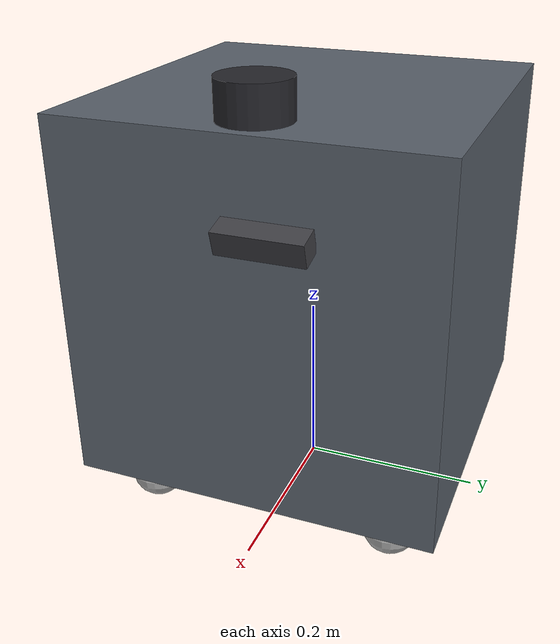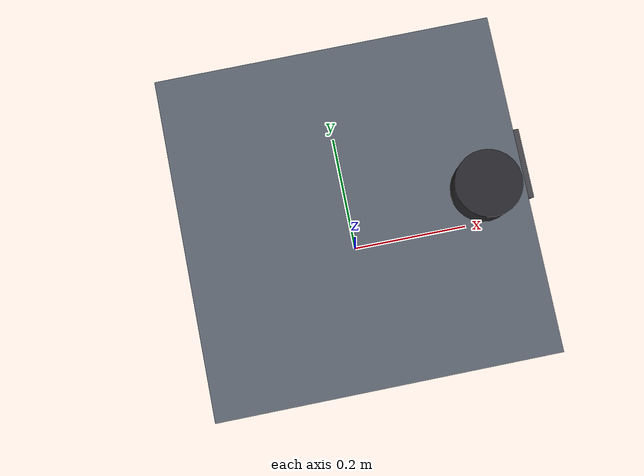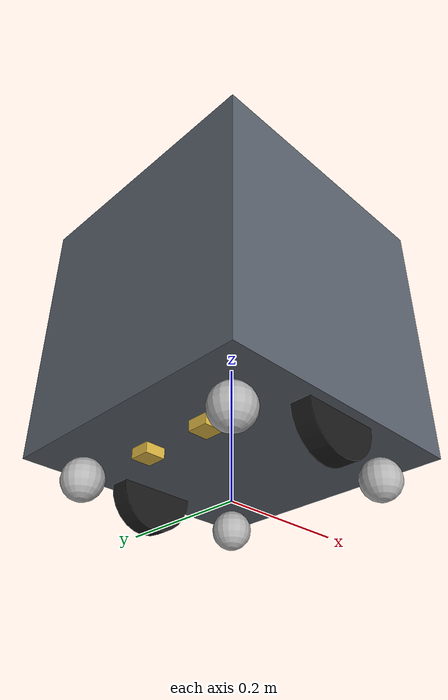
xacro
<?xml version="1.0"?>
<robot xmlns:xacro="http://www.ros.org/wiki/xacro" name="orinbot">

  <!-- 시뮬레이션용 플러그인/센서를 포함할지 여부 -->
  <xacro:arg name="sim_mode" default="true"/>
  <!-- gz_ros2_control 에 넘길 컨트롤러 설정 파일 경로 -->
  <xacro:arg name="controllers_file" default=""/>
  <!-- 실물 런치에서 실측 구동륜 치수를 전달합니다. 기본값은 기존 시뮬레이션 치수. -->
  <xacro:arg name="wheel_radius" default="0.06"/>
  <xacro:arg name="wheel_separation" default="0.34"/>

  <xacro:include filename="$(find orinbot_description)/urdf/inertial_macros.xacro"/>
  <xacro:include filename="$(find orinbot_description)/urdf/d435i.urdf.xacro"/>
  <xacro:include filename="$(find orinbot_description)/urdf/rplidar_a2m12.urdf.xacro"/>
  <xacro:include filename="$(find orinbot_description)/urdf/orinbot.ros2_control.xacro"/>

  <!-- ======================= 치수 파라미터 ======================= -->
  <!-- 40 cm 정육면체 섀시 -->
  <xacro:property name="base_length" value="0.40"/>   <!-- 전후 길이 (x) -->
  <xacro:property name="base_width"  value="0.40"/>   <!-- 좌우 폭  (y) -->
  <xacro:property name="base_height" value="0.40"/>   <!-- 높이    (z) -->
  <xacro:property name="base_mass"   value="10.0"/>

  <xacro:property name="wheel_radius"     value="${float('$(arg wheel_radius)')}"/>
  <xacro:property name="wheel_width"      value="0.03"/>
  <xacro:property name="wheel_separation" value="${float('$(arg wheel_separation)')}"/> <!-- 좌우 구동륜 중심 간 거리 -->
  <xacro:property name="wheel_mass"       value="0.5"/>

  <!-- 캐스터 반지름을 구동륜의 절반으로 두면 섀시 바닥면이 자연스럽게 맞습니다 -->
  <xacro:property name="caster_radius" value="${wheel_radius/2.0}"/>
  <xacro:property name="caster_mass"   value="0.1"/>
  <xacro:property name="caster_x"      value="${base_length/2.0 - 0.06}"/>
  <xacro:property name="caster_y"      value="${base_width/2.0 - 0.06}"/>

  <!-- 지면 대비 섀시 바닥 높이 = 캐스터 지름 -->
  <xacro:property name="ground_clearance" value="${2*caster_radius}"/>
  <!-- base_link(섀시 중심)의 지면 기준 높이 -->
  <xacro:property name="base_z" value="${ground_clearance + base_height/2.0}"/>

  <material name="chassis_grey"><color rgba="0.35 0.38 0.42 1.0"/></material>
  <material name="wheel_black"><color rgba="0.1 0.1 0.1 1.0"/></material>
  <material name="caster_silver"><color rgba="0.7 0.7 0.7 1.0"/></material>
  <material name="pogo_gold"><color rgba="0.85 0.7 0.25 1.0"/></material>

  <!-- ======================= 본체 ======================= -->

  <!-- 지면에 투영된 기준 프레임 (Nav2 등이 사용) -->
  <link name="base_footprint"/>

  <joint name="base_joint" type="fixed">
    <parent link="base_footprint"/>
    <child link="base_link"/>
    <origin xyz="0 0 ${base_z}" rpy="0 0 0"/>
  </joint>

  <link name="base_link">
    <visual>
      <origin xyz="0 0 0" rpy="0 0 0"/>
      <geometry><box size="${base_length} ${base_width} ${base_height}"/></geometry>
      <material name="chassis_grey"/>
    </visual>
    <collision>
      <origin xyz="0 0 0" rpy="0 0 0"/>
      <geometry><box size="${base_length} ${base_width} ${base_height}"/></geometry>
    </collision>
    <xacro:inertial_box mass="${base_mass}" x="${base_length}" y="${base_width}" z="${base_height}">
      <origin xyz="0 0 0" rpy="0 0 0"/>
    </xacro:inertial_box>

    <xacro:property name="pogo_x" value="-0.10"/>      <!-- 배면 쪽 -->
    <xacro:property name="pogo_y" value="0.055"/>
    <xacro:property name="pogo_bottom" value="0.045"/>  <!-- 지면 기준 -->
    <xacro:property name="pogo_size" value="0.03"/>     <!-- 브래킷, 접촉면 아님 -->
    <xacro:property name="pogo_h" value="0.015"/>
    <xacro:macro name="pogo_block" params="reflect">
      <visual>
        <origin xyz="${pogo_x} ${reflect * pogo_y}
                     ${pogo_bottom + pogo_h/2.0 - base_z}" rpy="0 0 0"/>
        <geometry><box size="${pogo_size} ${pogo_size} ${pogo_h}"/></geometry>
        <material name="pogo_gold"/>
      </visual>
      <collision>
        <origin xyz="${pogo_x} ${reflect * pogo_y}
                     ${pogo_bottom + pogo_h/2.0 - base_z}" rpy="0 0 0"/>
        <geometry><box size="${pogo_size} ${pogo_size} ${pogo_h}"/></geometry>
      </collision>
    </xacro:macro>
    <xacro:pogo_block reflect="1"/>
    <xacro:pogo_block reflect="-1"/>
  </link>

  <!-- ======================= 구동륜 ======================= -->
  <!-- reflect: 왼쪽 +1, 오른쪽 -1 -->
  <xacro:macro name="drive_wheel" params="prefix reflect">
    <link name="${prefix}_wheel_link">
      <visual>
        <origin xyz="0 0 0" rpy="${pi/2} 0 0"/>
        <geometry><cylinder radius="${wheel_radius}" length="${wheel_width}"/></geometry>
        <material name="wheel_black"/>
      </visual>
      <collision>
        <origin xyz="0 0 0" rpy="${pi/2} 0 0"/>
        <geometry><cylinder radius="${wheel_radius}" length="${wheel_width}"/></geometry>
      </collision>
      <xacro:inertial_cylinder mass="${wheel_mass}" radius="${wheel_radius}" length="${wheel_width}">
        <origin xyz="0 0 0" rpy="${pi/2} 0 0"/>
      </xacro:inertial_cylinder>
    </link>

    <joint name="${prefix}_wheel_joint" type="continuous">
      <parent link="base_link"/>
      <child link="${prefix}_wheel_link"/>
      <origin xyz="0 ${reflect * wheel_separation/2.0} ${-base_height/2.0 - ground_clearance + wheel_radius}"
              rpy="0 0 0"/>
      <axis xyz="0 1 0"/>
      <dynamics damping="0.05" friction="0.1"/>
    </joint>

    <gazebo reference="${prefix}_wheel_link">
      <mu1>1.2</mu1>
      <mu2>1.2</mu2>
      <kp>1e6</kp>
      <kd>10.0</kd>
      <material>Gazebo/Black</material>
    </gazebo>
  </xacro:macro>

  <xacro:drive_wheel prefix="left"  reflect="1"/>
  <xacro:drive_wheel prefix="right" reflect="-1"/>

  <!-- ======================= 캐스터 4개 ======================= -->
  <!--
    캐스터는 회전 조인트를 모델링하지 않고 마찰 없는 구(sphere)로 처리합니다.
    실제 캐스터의 스위블 동역학은 차동구동 주행에 거의 영향이 없고,
    조인트를 넣으면 시뮬레이션이 불안정해지기 쉽습니다.
  -->
  <xacro:macro name="caster_wheel" params="prefix x_reflect y_reflect">
    <link name="${prefix}_caster_link">
      <visual>
        <origin xyz="0 0 0" rpy="0 0 0"/>
        <geometry><sphere radius="${caster_radius}"/></geometry>
        <material name="caster_silver"/>
      </visual>
      <collision>
        <origin xyz="0 0 0" rpy="0 0 0"/>
        <geometry><sphere radius="${caster_radius}"/></geometry>
      </collision>
      <xacro:inertial_sphere mass="${caster_mass}" radius="${caster_radius}">
        <origin xyz="0 0 0" rpy="0 0 0"/>
      </xacro:inertial_sphere>
    </link>

    <joint name="${prefix}_caster_joint" type="fixed">
      <parent link="base_link"/>
      <child link="${prefix}_caster_link"/>
      <origin xyz="${x_reflect * caster_x} ${y_reflect * caster_y}
                   ${-base_height/2.0 - caster_radius}" rpy="0 0 0"/>
    </joint>

    <gazebo reference="${prefix}_caster_link">
      <mu1>0.0</mu1>
      <mu2>0.0</mu2>
      <kp>1e6</kp>
      <kd>10.0</kd>
      <material>Gazebo/Grey</material>
    </gazebo>
  </xacro:macro>

  <xacro:caster_wheel prefix="front_left"  x_reflect="1"  y_reflect="1"/>
  <xacro:caster_wheel prefix="front_right" x_reflect="1"  y_reflect="-1"/>
  <xacro:caster_wheel prefix="rear_left"   x_reflect="-1" y_reflect="1"/>
  <xacro:caster_wheel prefix="rear_right"  x_reflect="-1" y_reflect="-1"/>

  <xacro:property name="camera_pitch" value="${radians(15)}"/>
  <xacro:property name="camera_below_top" value="0.10"/>

  <xacro:property name="camera_color_rate" value="15"/>
  <!-- infra1 주기 [Hz]. 0 이면 끕니다.
       컬러 방식(RTAB-Map 이 color + aligned_depth 를 씀)에서는 쓰지 않습니다.
       실기에서 어두운 환경 대응이 필요해지면 되살리세요. -->
  <xacro:property name="camera_infra1_rate" value="0"/>

  <xacro:sensor_d435i name="camera" parent="base_link"
                      color_rate="${camera_color_rate}"
                      infra1_rate="${camera_infra1_rate}">
    <origin xyz="${base_length/2.0} 0 ${base_height/2.0 - camera_below_top}"
            rpy="0 ${camera_pitch} 0"/>
  </xacro:sensor_d435i>

  <!-- ======================= RPLIDAR A2M12 ======================= -->
  <!--
    섀시 상단면에 직접 장착. 상단 중앙에서 전방으로 15 cm.

    지면 기준: 케이스 바닥 0.46 m (= 섀시 상단), 스캔 평면 0.4908 m

    카메라(0.36 m)보다 13 cm 높고, 카메라는 섀시 앞면에 붙어 있어
    라이다의 360도 시야를 가리지 않습니다.
  -->
  <xacro:property name="lidar_forward" value="0.15"/>

  <!-- 링크 원점이 스캔 평면이므로, 케이스 바닥을 상단면에 놓으려면
       데이터시트상 오프셋 30.8mm 를 더해야 합니다. -->
  <xacro:property name="lidar_plane_above_base" value="0.0308"/>

  <xacro:rplidar_a2m12 name="laser" parent="base_link">
    <origin xyz="${lidar_forward} 0 ${base_height/2.0 + lidar_plane_above_base}"
            rpy="0 0 0"/>
  </xacro:rplidar_a2m12>

  <!-- ======================= 섀시 Gazebo 속성 ======================= -->
  <gazebo reference="base_link">
    <material>Gazebo/Grey</material>
  </gazebo>

  <!-- ======================= 지상 진실 자세 (시뮬 전용) ======================= -->
  <xacro:if value="$(arg sim_mode)">
    <gazebo>
      <plugin filename="gz-sim-odometry-publisher-system"
              name="gz::sim::systems::OdometryPublisher">
        <odom_frame>world</odom_frame>
        <robot_base_frame>base_footprint</robot_base_frame>
        <odom_topic>ground_truth/odom</odom_topic>
        <odom_publish_frequency>20</odom_publish_frequency>
        <dimensions>2</dimensions>
      </plugin>
    </gazebo>
  </xacro:if>

  <!-- ======================= ros2_control ======================= -->
  <xacro:orinbot_ros2_control
      sim_mode="$(arg sim_mode)"
      controllers_file="$(arg controllers_file)"/>

</robot>

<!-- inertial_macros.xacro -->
<robot xmlns:xacro="http://www.ros.org/wiki/xacro">

  <!-- 원점이 형상 중심에 있는 기본 도형들의 관성 텐서 -->

  <xacro:macro name="inertial_box" params="mass x y z *origin">
    <inertial>
      <xacro:insert_block name="origin"/>
      <mass value="${mass}"/>
      <inertia ixx="${(mass/12.0)*(y*y+z*z)}" ixy="0.0" ixz="0.0"
               iyy="${(mass/12.0)*(x*x+z*z)}" iyz="0.0"
               izz="${(mass/12.0)*(x*x+y*y)}"/>
    </inertial>
  </xacro:macro>

  <!-- z축을 중심축으로 하는 원기둥 -->
  <xacro:macro name="inertial_cylinder" params="mass radius length *origin">
    <inertial>
      <xacro:insert_block name="origin"/>
      <mass value="${mass}"/>
      <inertia ixx="${(mass/12.0)*(3*radius*radius+length*length)}" ixy="0.0" ixz="0.0"
               iyy="${(mass/12.0)*(3*radius*radius+length*length)}" iyz="0.0"
               izz="${(mass/2.0)*(radius*radius)}"/>
    </inertial>
  </xacro:macro>

  <xacro:macro name="inertial_sphere" params="mass radius *origin">
    <inertial>
      <xacro:insert_block name="origin"/>
      <mass value="${mass}"/>
      <inertia ixx="${(2.0/5.0)*mass*radius*radius}" ixy="0.0" ixz="0.0"
               iyy="${(2.0/5.0)*mass*radius*radius}" iyz="0.0"
               izz="${(2.0/5.0)*mass*radius*radius}"/>
    </inertial>
  </xacro:macro>

</robot>

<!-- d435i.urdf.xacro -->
<robot xmlns:xacro="http://www.ros.org/wiki/xacro">

  <xacro:macro name="sensor_d435i"
               params="name:=camera parent update_rate:=15 color_rate:=0 infra1_rate:=15 width:=424 height:=240
                       depth_hfov:=1.518 color_hfov:=1.211 *origin">

    <!-- 실제 D435i 외형 치수: 90 x 25 x 25 mm -->
    <xacro:property name="d435_length" value="0.090"/>
    <xacro:property name="d435_depth"  value="0.025"/>
    <xacro:property name="d435_height" value="0.025"/>
    <xacro:property name="d435_mass"   value="0.072"/>

    <!-- 실제 D435i 내부 extrinsics (depth 기준, 단위 m) -->
    <xacro:property name="depth_to_color_y" value="-0.015"/>
    <xacro:property name="depth_to_imu_x"   value="-0.00552"/>
    <xacro:property name="depth_to_imu_y"   value="0.0051"/>
    <xacro:property name="depth_to_imu_z"   value="0.01174"/>

    <!-- 마운트 지점: 이 링크의 원점이 카메라 하우징의 좌측 나사구멍 기준 -->
    <link name="${name}_bottom_screw_frame"/>
    <joint name="${name}_joint" type="fixed">
      <xacro:insert_block name="origin"/>
      <parent link="${parent}"/>
      <child link="${name}_bottom_screw_frame"/>
    </joint>

    <!-- 카메라 본체 -->
    <link name="${name}_link">
      <visual>
        <origin xyz="0 ${-depth_to_color_y} 0" rpy="0 0 0"/>
        <geometry>
          <box size="${d435_depth} ${d435_length} ${d435_height}"/>
        </geometry>
        <material name="d435_aluminium">
          <color rgba="0.25 0.25 0.27 1.0"/>
        </material>
      </visual>
      <collision>
        <origin xyz="0 ${-depth_to_color_y} 0" rpy="0 0 0"/>
        <geometry>
          <box size="${d435_depth} ${d435_length} ${d435_height}"/>
        </geometry>
      </collision>
      <inertial>
        <mass value="${d435_mass}"/>
        <origin xyz="0 0 0" rpy="0 0 0"/>
        <inertia ixx="0.003881243" ixy="0.0" ixz="0.0"
                 iyy="0.000498940" iyz="0.0"
                 izz="0.003879257"/>
      </inertial>
    </link>
    <joint name="${name}_link_joint" type="fixed">
      <origin xyz="0.0106 0.0175 0.0125" rpy="0 0 0"/>
      <parent link="${name}_bottom_screw_frame"/>
      <child link="${name}_link"/>
    </joint>

    <!-- ===== Depth ===== -->
    <link name="${name}_depth_frame"/>
    <joint name="${name}_depth_joint" type="fixed">
      <origin xyz="0 0 0" rpy="0 0 0"/>
      <parent link="${name}_link"/>
      <child link="${name}_depth_frame"/>
    </joint>

    <link name="${name}_depth_optical_frame"/>
    <joint name="${name}_depth_optical_joint" type="fixed">
      <origin xyz="0 0 0" rpy="${-pi/2} 0 ${-pi/2}"/>
      <parent link="${name}_depth_frame"/>
      <child link="${name}_depth_optical_frame"/>
    </joint>

    <!-- ===== Color ===== -->
    <link name="${name}_color_frame"/>
    <joint name="${name}_color_joint" type="fixed">
      <origin xyz="0 ${depth_to_color_y} 0" rpy="0 0 0"/>
      <parent link="${name}_depth_frame"/>
      <child link="${name}_color_frame"/>
    </joint>

    <link name="${name}_color_optical_frame"/>
    <joint name="${name}_color_optical_joint" type="fixed">
      <origin xyz="0 0 0" rpy="${-pi/2} 0 ${-pi/2}"/>
      <parent link="${name}_color_frame"/>
      <child link="${name}_color_optical_frame"/>
    </joint>

    <!-- ===== 적외선 스테레오 (실기에서 글로벌 셔터 스트림으로 쓸 수 있음) ===== -->
    <!-- 시뮬레이션에서 영상을 만들지는 않고 프레임만 정의합니다.
         공식 realsense2_description 과 이름을 맞춰 두는 용도입니다. -->
    <xacro:macro name="_optical_pair" params="prefix parent x y z">
      <link name="${prefix}_frame"/>
      <joint name="${prefix}_joint" type="fixed">
        <origin xyz="${x} ${y} ${z}" rpy="0 0 0"/>
        <parent link="${parent}"/>
        <child link="${prefix}_frame"/>
      </joint>
      <link name="${prefix}_optical_frame"/>
      <joint name="${prefix}_optical_joint" type="fixed">
        <origin xyz="0 0 0" rpy="${-pi/2} 0 ${-pi/2}"/>
        <parent link="${prefix}_frame"/>
        <child link="${prefix}_optical_frame"/>
      </joint>
    </xacro:macro>

    <xacro:_optical_pair prefix="${name}_infra1" parent="${name}_depth_frame"
                         x="0" y="0" z="0"/>
    <xacro:_optical_pair prefix="${name}_infra2" parent="${name}_depth_frame"
                         x="0" y="-0.050" z="0"/>

    <!-- ===== IMU (D435i / D435if 전용) ===== -->
    <!-- 이름은 공식 realsense2_description 을 따릅니다:
         가속도계와 자이로가 각각 별도 프레임을 갖습니다. -->
    <xacro:_optical_pair prefix="${name}_accel" parent="${name}_depth_frame"
                         x="${depth_to_imu_x}" y="${depth_to_imu_y}" z="${depth_to_imu_z}"/>
    <xacro:_optical_pair prefix="${name}_gyro" parent="${name}_depth_frame"
                         x="${depth_to_imu_x}" y="${depth_to_imu_y}" z="${depth_to_imu_z}"/>

    <link name="${name}_imu_optical_frame"/>
    <joint name="${name}_imu_optical_joint" type="fixed">
      <origin xyz="${depth_to_imu_x} ${depth_to_imu_y} ${depth_to_imu_z}"
              rpy="${-pi/2} 0 ${-pi/2}"/>
      <parent link="${name}_depth_frame"/>
      <child link="${name}_imu_optical_frame"/>
    </joint>

    <gazebo reference="${name}_link">
      <material>Gazebo/DarkGrey</material>
    </gazebo>

    <!-- [depth]
      실기의 depth 는 좌측 IR(infra1) 광학축 기준으로 나옵니다. 그래서
      infra1 프레임과 depth 프레임이 같은 위치에 있고, 두 스트림은
      align_depth 없이도 픽셀 단위로 정합됩니다. 여기서도 동일하게 둡니다.
    -->
    <gazebo reference="${name}_depth_frame">
      <sensor name="${name}_depth" type="depth_camera">
        <update_rate>${update_rate}</update_rate>
        <always_on>1</always_on>
        <visualize>false</visualize>
        <!-- camera_info 는 토픽 경로의 부모에 붙습니다. 경로를 한 단계
             더 두지 않으면 세 카메라가 /camera/camera_info 하나를
             공유해 서로의 내부 파라미터를 덮어씁니다. -->
        <topic>${name}/depth/image</topic>
        <camera>
          <!-- D435i 뎁스/IR 화각은 87도 x 58도 입니다 (컬러의 69도가 아님).
               424x240 에서 수직 화각은 56.5도가 됩니다. -->
          <horizontal_fov>${depth_hfov}</horizontal_fov>
          <image>
            <width>${width}</width>
            <height>${height}</height>
            <format>R_FLOAT32</format>
          </image>
          <clip>
            <near>0.105</near>
            <far>10.0</far>
          </clip>
          <optical_frame_id>${name}_depth_optical_frame</optical_frame_id>
        </camera>
      </sensor>
    </gazebo>

    <xacro:if value="${infra1_rate > 0}">
    <gazebo reference="${name}_infra1_frame">
      <sensor name="${name}_infra1" type="camera">
        <update_rate>${infra1_rate}</update_rate>
        <always_on>1</always_on>
        <visualize>false</visualize>
        <topic>${name}/infra1/image</topic>
        <camera>
          <!-- IR 센서는 뎁스와 같은 87도 화각 -->
          <horizontal_fov>${depth_hfov}</horizontal_fov>
          <image>
            <width>${width}</width>
            <height>${height}</height>
            <format>L8</format>
          </image>
          <clip>
            <near>0.1</near>
            <far>20.0</far>
          </clip>
          <noise>
            <type>gaussian</type>
            <mean>0.0</mean>
            <stddev>0.005</stddev>
          </noise>
          <optical_frame_id>${name}_infra1_optical_frame</optical_frame_id>
        </camera>
      </sensor>
    </gazebo>
    </xacro:if>

    <!-- [color]
      VSLAM 은 infra1 을 쓰므로 컬러는 사람이 보기 위한 용도입니다.
      렌더링 부하를 줄이려고 낮은 주기로 돌립니다.
      아예 끄려면 color_rate 를 0 으로 두세요.
    -->
    <xacro:if value="${color_rate > 0}">
      <gazebo reference="${name}_color_frame">
        <sensor name="${name}_color" type="camera">
          <update_rate>${color_rate}</update_rate>
          <always_on>1</always_on>
          <visualize>false</visualize>
          <topic>${name}/color/image</topic>
          <camera>
            <!-- 컬러만 69.4도 x 42.5도 -->
            <horizontal_fov>${color_hfov}</horizontal_fov>
            <image>
              <width>${width}</width>
              <height>${height}</height>
              <format>R8G8B8</format>
            </image>
            <clip>
              <near>0.1</near>
              <far>20.0</far>
            </clip>
            <optical_frame_id>${name}_color_optical_frame</optical_frame_id>
          </camera>
        </sensor>
      </gazebo>
    </xacro:if>

    <!-- [IMU]
      카메라와 달리 IMU 는 "바라보는 방향"이 없고, 붙어 있는 링크의 축
      기준으로 각속도/가속도를 냅니다. 그래서 광학 규약 링크에 붙여야
      실기(realsense2_camera 가 camera_imu_optical_frame 기준으로 발행)와
      축이 일치합니다.
    -->
    <gazebo reference="${name}_imu_optical_frame">
      <sensor name="${name}_imu" type="imu">
        <update_rate>200</update_rate>
        <always_on>1</always_on>
        <topic>${name}/imu</topic>
        <gz_frame_id>${name}_imu_optical_frame</gz_frame_id>
        <imu>
          <angular_velocity>
            <x><noise type="gaussian"><mean>0.0</mean><stddev>0.0003</stddev></noise></x>
            <y><noise type="gaussian"><mean>0.0</mean><stddev>0.0003</stddev></noise></y>
            <z><noise type="gaussian"><mean>0.0</mean><stddev>0.0003</stddev></noise></z>
          </angular_velocity>
          <linear_acceleration>
            <x><noise type="gaussian"><mean>0.0</mean><stddev>0.017</stddev></noise></x>
            <y><noise type="gaussian"><mean>0.0</mean><stddev>0.017</stddev></noise></y>
            <z><noise type="gaussian"><mean>0.0</mean><stddev>0.017</stddev></noise></z>
          </linear_acceleration>
        </imu>
      </sensor>
    </gazebo>

  </xacro:macro>
</robot>

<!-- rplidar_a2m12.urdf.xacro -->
<robot xmlns:xacro="http://www.ros.org/wiki/xacro">

  <xacro:macro name="rplidar_a2m12"
               params="name:=laser parent update_rate:=10 samples:=1600
                       range_min:=0.2 range_max:=12.0 *origin">

    <!-- A2M12 외형: 지름 76 mm, 높이 41 mm, 무게 약 190 g -->
    <xacro:property name="lidar_radius" value="0.038"/>
    <xacro:property name="lidar_height" value="0.041"/>
    <xacro:property name="lidar_mass"   value="0.19"/>

    <!--
      링크 원점 = 스캔 평면(광학 중심). 데이터시트상 바닥면에서 위로
      약 30.8 mm 지점입니다. 마운트 좌표를 이 기준으로 잡으세요.
    -->
    <link name="${name}">
      <visual>
        <origin xyz="0 0 ${lidar_height/2 - 0.0308}" rpy="0 0 0"/>
        <geometry>
          <cylinder radius="${lidar_radius}" length="${lidar_height}"/>
        </geometry>
        <material name="rplidar_black">
          <color rgba="0.15 0.15 0.17 1.0"/>
        </material>
      </visual>
      <collision>
        <origin xyz="0 0 ${lidar_height/2 - 0.0308}" rpy="0 0 0"/>
        <geometry>
          <cylinder radius="${lidar_radius}" length="${lidar_height}"/>
        </geometry>
      </collision>
      <inertial>
        <origin xyz="0 0 ${lidar_height/2 - 0.0308}" rpy="0 0 0"/>
        <mass value="${lidar_mass}"/>
        <inertia
          ixx="${(lidar_mass/12.0)*(3*lidar_radius*lidar_radius + lidar_height*lidar_height)}"
          ixy="0.0" ixz="0.0"
          iyy="${(lidar_mass/12.0)*(3*lidar_radius*lidar_radius + lidar_height*lidar_height)}"
          iyz="0.0"
          izz="${(lidar_mass/2.0)*(lidar_radius*lidar_radius)}"/>
      </inertial>
    </link>

    <joint name="${name}_joint" type="fixed">
      <xacro:insert_block name="origin"/>
      <parent link="${parent}"/>
      <child link="${name}"/>
    </joint>

    <gazebo reference="${name}">
      <material>Gazebo/DarkGrey</material>

      <!--
        gpu_lidar 는 스캔 평면이 링크의 XY 평면이고 0도가 +X 방향입니다.
        따라서 본체 규약 링크에 그대로 붙이면 됩니다
        (카메라와 달리 광학 프레임 변환이 필요 없습니다).
      -->
      <sensor name="${name}_sensor" type="gpu_lidar">
        <update_rate>${update_rate}</update_rate>
        <always_on>1</always_on>
        <visualize>false</visualize>
        <topic>scan</topic>
        <gz_frame_id>${name}</gz_frame_id>
        <lidar>
          <scan>
            <horizontal>
              <samples>${samples}</samples>
              <resolution>1</resolution>
              <min_angle>${-pi}</min_angle>
              <max_angle>${pi}</max_angle>
            </horizontal>
          </scan>
          <range>
            <min>${range_min}</min>
            <max>${range_max}</max>
            <resolution>0.01</resolution>
          </range>
          <noise>
            <type>gaussian</type>
            <mean>0.0</mean>
            <!-- A2 계열 거리 정확도는 실측 거리의 약 1% -->
            <stddev>0.015</stddev>
          </noise>
        </lidar>
      </sensor>
    </gazebo>

  </xacro:macro>
</robot>
